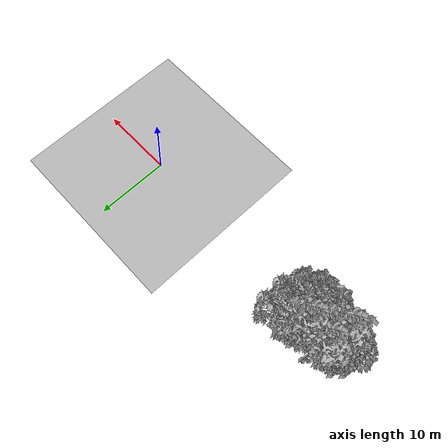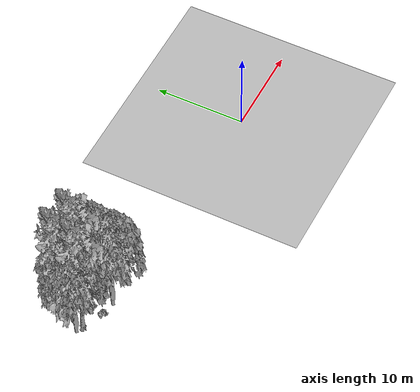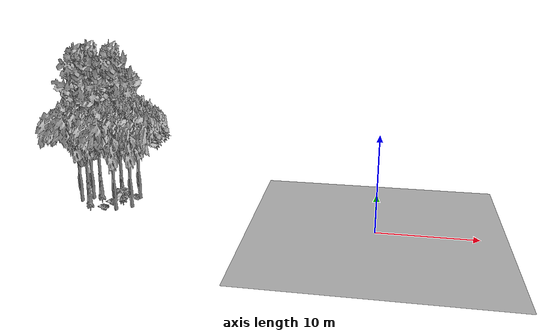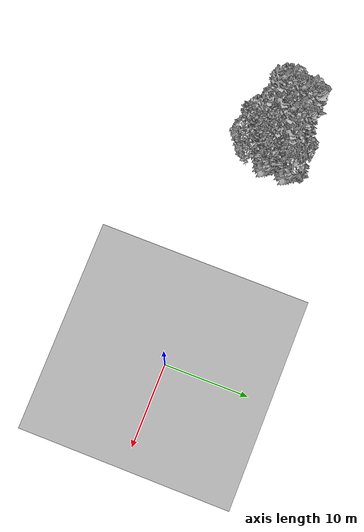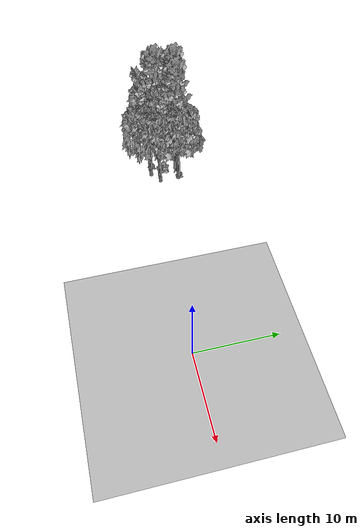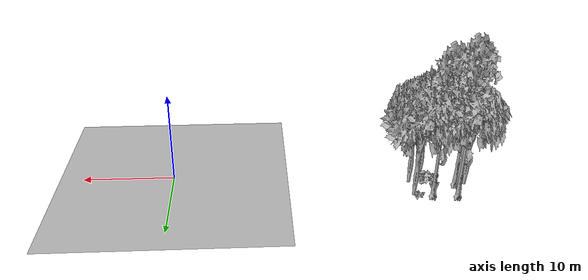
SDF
<sdf version="1.7">
 <world name="default">
  <model name="ground_plane">
   <static>1</static>
   <link name="link">
    <collision name="collision">
     <pose>-50 0 0 0 -0 0</pose>
     <geometry><plane><normal>0 0 1</normal><size>80 80</size></plane></geometry>
     <surface><contact><ode><min_depth>0.01</min_depth><max_vel>0</max_vel></ode></contact></surface>
    </collision>
    <visual name="grass">
     <cast_shadows>0</cast_shadows>
     <geometry>
      <mesh>
       <scale>0.46714285714285714 0.46714285714285714 0.1</scale>
       <uri>file://grass_plane/meshes/grass_plane.dae</uri>
      </mesh>
     </geometry>
    </visual>
   </link>
  </model>
  <model name="Tree 98">
   <static>1</static>
   <pose>-32.06906444755941 2.612249692138988 0 1.57079 -0 0</pose>
   <link name="link">
    <collision name="collision">
     <geometry><mesh><scale>3.5 5 3.5</scale><uri>model://tree_2/meshes/tree_2.obj</uri></mesh></geometry>
    </collision>
    <visual name="visual">
     <geometry><mesh><scale>3.5 5 3.5</scale><uri>model://tree_2/meshes/tree_2.obj</uri></mesh></geometry>
    </visual>
   </link>
  </model>
  <model name="Tree 184">
   <static>1</static>
   <pose>-28.070372486313175 4.5238674443815725 0 1.57079 -0 0</pose>
   <link name="link">
    <collision name="collision">
     <geometry><mesh><scale>3.5 5 3.5</scale><uri>model://tree_9/meshes/tree_9.obj</uri></mesh></geometry>
    </collision>
    <visual name="visual">
     <geometry><mesh><scale>3.5 5 3.5</scale><uri>model://tree_9/meshes/tree_9.obj</uri></mesh></geometry>
    </visual>
   </link>
  </model>
  <model name="Tree 321">
   <static>1</static>
   <pose>-27.465437442213915 0.9332038536881413 0 1.57079 -0 0</pose>
   <link name="link">
    <collision name="collision">
     <geometry><mesh><scale>3.5 5 3.5</scale><uri>model://tree_2/meshes/tree_2.obj</uri></mesh></geometry>
    </collision>
    <visual name="visual">
     <geometry><mesh><scale>3.5 5 3.5</scale><uri>model://tree_2/meshes/tree_2.obj</uri></mesh></geometry>
    </visual>
   </link>
  </model>
  <model name="Tree 379">
   <static>1</static>
   <pose>-31.03317955079608 2.4217318617825185 0 1.57079 -0 0</pose>
   <link name="link">
    <collision name="collision">
     <geometry><mesh><scale>3.5 5 3.5</scale><uri>model://tree_9/meshes/tree_9.obj</uri></mesh></geometry>
    </collision>
    <visual name="visual">
     <geometry><mesh><scale>3.5 5 3.5</scale><uri>model://tree_9/meshes/tree_9.obj</uri></mesh></geometry>
    </visual>
   </link>
  </model>
  <model name="Tree 406">
   <static>1</static>
   <pose>-26.060723741803503 4.4613942877555175 0 1.57079 -0 0</pose>
   <link name="link">
    <collision name="collision">
     <geometry><mesh><scale>3.5 5 3.5</scale><uri>model://tree_2/meshes/tree_2.obj</uri></mesh></geometry>
    </collision>
    <visual name="visual">
     <geometry><mesh><scale>3.5 5 3.5</scale><uri>model://tree_2/meshes/tree_2.obj</uri></mesh></geometry>
    </visual>
   </link>
  </model>
  <model name="Tree 485">
   <static>1</static>
   <pose>-31.136089682684204 3.5349656832191556 0 1.57079 -0 0</pose>
   <link name="link">
    <collision name="collision">
     <geometry><mesh><scale>3.5 5 3.5</scale><uri>model://tree_2/meshes/tree_2.obj</uri></mesh></geometry>
    </collision>
    <visual name="visual">
     <geometry><mesh><scale>3.5 5 3.5</scale><uri>model://tree_2/meshes/tree_2.obj</uri></mesh></geometry>
    </visual>
   </link>
  </model>
  <model name="Tree 492">
   <static>1</static>
   <pose>-30.690455273633862 4.7936994746866475 0 1.57079 -0 0</pose>
   <link name="link">
    <collision name="collision">
     <geometry><mesh><scale>3.5 5 3.5</scale><uri>model://tree_9/meshes/tree_9.obj</uri></mesh></geometry>
    </collision>
    <visual name="visual">
     <geometry><mesh><scale>3.5 5 3.5</scale><uri>model://tree_9/meshes/tree_9.obj</uri></mesh></geometry>
    </visual>
   </link>
  </model>
  <model name="Tree 528">
   <static>1</static>
   <pose>-26.05364720377984 1.9385661300844177 0 1.57079 -0 0</pose>
   <link name="link">
    <collision name="collision">
     <geometry><mesh><scale>3.5 5 3.5</scale><uri>model://tree_2/meshes/tree_2.obj</uri></mesh></geometry>
    </collision>
    <visual name="visual">
     <geometry><mesh><scale>3.5 5 3.5</scale><uri>model://tree_2/meshes/tree_2.obj</uri></mesh></geometry>
    </visual>
   </link>
  </model>
  <model name="Bush 102">
   <static>1</static>
   <pose>-26.51029049126234 4.62230187414729 0 1.57079 -0 0</pose>
   <link name="link">
    <collision name="collision">
     <geometry><mesh><scale>2 2 2</scale><uri>model://bush_2/meshes/bush_2.obj</uri></mesh></geometry>
     <surface><contact><collide_without_contact>false</collide_without_contact></contact></surface>
    </collision>
    <visual name="visual">
     <geometry><mesh><scale>2 2 2</scale><uri>model://bush_2/meshes/bush_2.obj</uri></mesh></geometry>
    </visual>
   </link>
  </model>
  <model name="Bush 106">
   <static>1</static>
   <pose>-27.448050272265704 2.5198914910311885 0 1.57079 -0 0</pose>
   <link name="link">
    <collision name="collision">
     <geometry><mesh><scale>2 2 2</scale><uri>model://bush_1/meshes/bush_1.obj</uri></mesh></geometry>
     <surface><contact><collide_without_contact>false</collide_without_contact></contact></surface>
    </collision>
    <visual name="visual">
     <geometry><mesh><scale>2 2 2</scale><uri>model://bush_1/meshes/bush_1.obj</uri></mesh></geometry>
    </visual>
   </link>
  </model>
  <model name="Bush 405">
   <static>1</static>
   <pose>-28.615860859519575 2.745062884023575 0 1.57079 -0 0</pose>
   <link name="link">
    <collision name="collision">
     <geometry><mesh><scale>2 2 2</scale><uri>model://bush_2/meshes/bush_2.obj</uri></mesh></geometry>
     <surface><contact><collide_without_contact>false</collide_without_contact></contact></surface>
    </collision>
    <visual name="visual">
     <geometry><mesh><scale>2 2 2</scale><uri>model://bush_2/meshes/bush_2.obj</uri></mesh></geometry>
    </visual>
   </link>
  </model>
  <model name="Bush 467">
   <static>1</static>
   <pose>-28.925267311431 1.276207219660762 0 1.57079 -0 0</pose>
   <link name="link">
    <collision name="collision">
     <geometry><mesh><scale>2 2 2</scale><uri>model://bush_2/meshes/bush_2.obj</uri></mesh></geometry>
     <surface><contact><collide_without_contact>false</collide_without_contact></contact></surface>
    </collision>
    <visual name="visual">
     <geometry><mesh><scale>2 2 2</scale><uri>model://bush_2/meshes/bush_2.obj</uri></mesh></geometry>
    </visual>
   </link>
  </model>
 </world>
</sdf>
